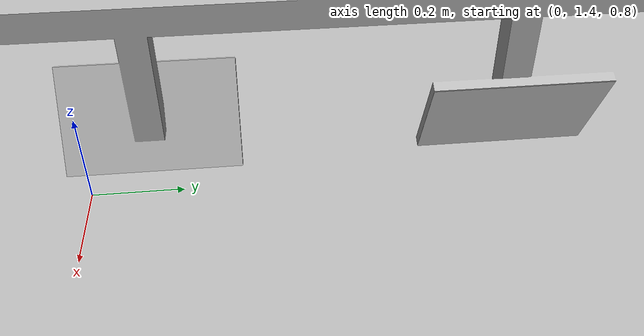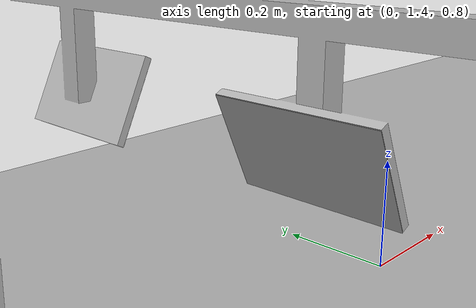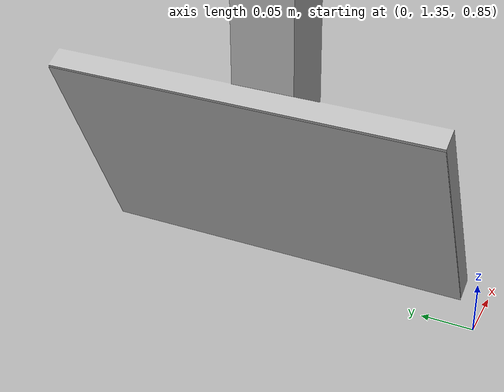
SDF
<?xml version="1.0" ?>
<sdf version="1.5">
  <model name="ca_field">

    <static>true</static>
    <link name="link">
      <collision name="collision">
        <geometry>
          <mesh>
             <scale>1 1 1</scale>
             <uri>model://ca_field/Meshes/ca_colis.dae</uri>
          </mesh>
        </geometry>
        <surface>
          <friction>
            <ode>
              <mu>100</mu>
              <mu2>50</mu2>
            </ode>
          </friction>
        </surface>
      </collision>
      <visual name="visual">
        <cast_shadows>true</cast_shadows>
        <geometry>
          <mesh>
             <scale>1 1 1</scale>
             <uri>model://ca_field/Meshes/ca_visual.dae</uri>
          </mesh>
        </geometry>
      </visual>
    </link>

    <include>
      <pose>-0.037 1.55 0.975 0 2.0071 3.14</pose>
      <name>tft1</name>
      <uri>model://ca_field/ca_tft</uri>
    </include>

    <include>
      <pose>0.037 2.3 0.975 0 2.0071 0</pose>
      <name>tft2</name>
      <uri>model://ca_field/ca_tft</uri>
    </include>

    <!-- General bs ball -->

  </model>
</sdf>

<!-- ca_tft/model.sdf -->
<sdf version="1.5">
  <model name="ca_tft">
    <static>true</static>
    <link name="link">
      <visual name="visual">
        <plugin name="ca_tft_plugin" filename="libca_tft.so">
        </plugin>
        <geometry>
          <plane>
            <size>0.2286 0.36576</size>
          </plane>
        </geometry>
        <material>
          <script>
            <uri>model://ca_field/Materials/scripts/</uri>
            <uri>model://ca_field/Materials/textures/</uri>
            <name>CAField/Stop</name>
          </script>
        </material>
      </visual>
    </link>
  </model>
</sdf>
